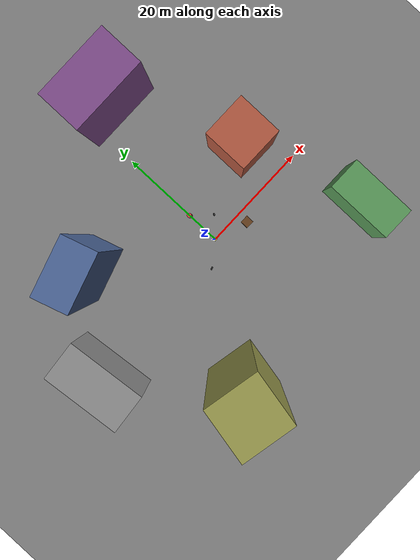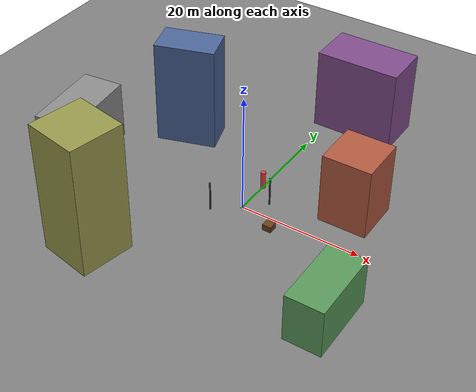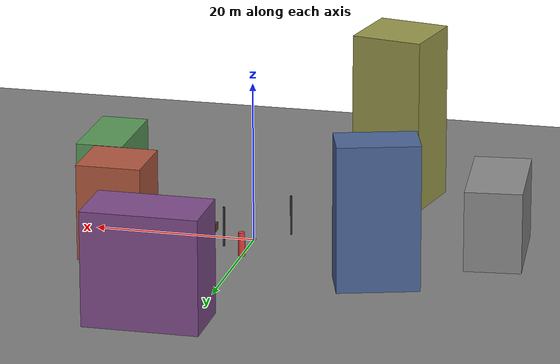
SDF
<?xml version="1.0" ?>
<sdf version="1.7">
  <world name="vo_city">

    <!-- ================= Physics ================= -->
    <physics name="1ms" type="ignored">
      <max_step_size>0.001</max_step_size>
      <real_time_factor>1.0</real_time_factor>
    </physics>

    <plugin filename="gz-sim-physics-system"
            name="gz::sim::systems::Physics"/>
    <plugin filename="gz-sim-user-commands-system"
            name="gz::sim::systems::UserCommands"/>
    <plugin filename="gz-sim-scene-broadcaster-system"
            name="gz::sim::systems::SceneBroadcaster"/>
    <plugin filename="gz-sim-sensors-system"
            name="gz::sim::systems::Sensors">
      <render_engine>ogre2</render_engine>
    </plugin>

    <!-- ================= Lighting ================= -->
    <!-- Directional sun kept slightly off-vertical so buildings cast
         directional shadows -> more texture gradient for feature detectors. -->
    <light type="directional" name="sun">
      <cast_shadows>true</cast_shadows>
      <pose>0 0 30 0 0 0</pose>
      <diffuse>0.9 0.9 0.9 1</diffuse>
      <specular>0.25 0.25 0.25 1</specular>
      <direction>-0.4 0.5 -0.9</direction>
      <attenuation>
        <range>1000</range>
        <constant>0.9</constant>
        <linear>0.01</linear>
        <quadratic>0.001</quadratic>
      </attenuation>
    </light>

    <scene>
      <ambient>0.5 0.5 0.5 1</ambient>
      <background>0.7 0.75 0.85 1</background>
      <shadows>true</shadows>
    </scene>

    <!-- ================= Ground ================= -->
    <!-- Textured checker-like plane. A flat single-color plane gives VO
         almost nothing to track, so we use a repeating textured material. -->
    <model name="ground_plane">
      <static>true</static>
      <link name="link">
        <collision name="collision">
          <geometry>
            <plane>
              <normal>0 0 1</normal>
              <size>200 200</size>
            </plane>
          </geometry>
        </collision>
        <visual name="visual">
          <geometry>
            <plane>
              <normal>0 0 1</normal>
              <size>200 200</size>
            </plane>
          </geometry>
          <material>
            <ambient>0.3 0.3 0.3 1</ambient>
            <diffuse>0.5 0.5 0.5 1</diffuse>
            <specular>0.1 0.1 0.1 1</specular>
          </material>
        </visual>
      </link>
    </model>

    <!-- helper macro-style: each building is a static box -->
    <model name="building_A">
      <static>true</static>
      <pose>15 8 6 0 0 0</pose>
      <link name="link">
        <collision name="c"><geometry><box><size>8 8 12</size></box></geometry></collision>
        <visual name="v">
          <geometry><box><size>8 8 12</size></box></geometry>
          <material><ambient>0.6 0.3 0.2 1</ambient><diffuse>0.7 0.35 0.25 1</diffuse></material>
        </visual>
      </link>
    </model>

    <model name="building_B">
      <static>true</static>
      <pose>-18 12 9 0 0 0.3</pose>
      <link name="link">
        <collision name="c"><geometry><box><size>10 6 18</size></box></geometry></collision>
        <visual name="v">
          <geometry><box><size>10 6 18</size></box></geometry>
          <material><ambient>0.25 0.35 0.5 1</ambient><diffuse>0.3 0.4 0.6 1</diffuse></material>
        </visual>
      </link>
    </model>

    <model name="building_C">
      <static>true</static>
      <pose>22 -14 4 0 0 0</pose>
      <link name="link">
        <collision name="c"><geometry><box><size>6 12 8</size></box></geometry></collision>
        <visual name="v">
          <geometry><box><size>6 12 8</size></box></geometry>
          <material><ambient>0.3 0.5 0.3 1</ambient><diffuse>0.35 0.6 0.35 1</diffuse></material>
        </visual>
      </link>
    </model>

    <model name="building_D">
      <static>true</static>
      <pose>-14 -20 11 0 0 -0.2</pose>
      <link name="link">
        <collision name="c"><geometry><box><size>9 9 22</size></box></geometry></collision>
        <visual name="v">
          <geometry><box><size>9 9 22</size></box></geometry>
          <material><ambient>0.5 0.5 0.25 1</ambient><diffuse>0.6 0.6 0.3 1</diffuse></material>
        </visual>
      </link>
    </model>

    <model name="building_E">
      <static>true</static>
      <pose>5 30 7 0 0 0</pose>
      <link name="link">
        <collision name="c"><geometry><box><size>14 8 14</size></box></geometry></collision>
        <visual name="v">
          <geometry><box><size>14 8 14</size></box></geometry>
          <material><ambient>0.4 0.25 0.45 1</ambient><diffuse>0.5 0.3 0.55 1</diffuse></material>
        </visual>
      </link>
    </model>

    <model name="building_F">
      <static>true</static>
      <pose>-30 -2 5 0 0 0.1</pose>
      <link name="link">
        <collision name="c"><geometry><box><size>7 14 10</size></box></geometry></collision>
        <visual name="v">
          <geometry><box><size>7 14 10</size></box></geometry>
          <material><ambient>0.45 0.45 0.45 1</ambient><diffuse>0.55 0.55 0.55 1</diffuse></material>
        </visual>
      </link>
    </model>

    <!-- ================= Street furniture =================
         Small nearby objects create high-parallax features (crucial for
         disambiguating translation vs. rotation in monocular VO). -->

    <model name="lamp_post_1">
      <static>true</static>
      <pose>3 3 2.5 0 0 0</pose>
      <link name="link">
        <collision name="c"><geometry><cylinder><radius>0.15</radius><length>5</length></cylinder></geometry></collision>
        <visual name="v">
          <geometry><cylinder><radius>0.15</radius><length>5</length></cylinder></geometry>
          <material><ambient>0.1 0.1 0.1 1</ambient><diffuse>0.15 0.15 0.15 1</diffuse></material>
        </visual>
      </link>
    </model>

    <model name="lamp_post_2">
      <static>true</static>
      <pose>-4 -3 2.5 0 0 0</pose>
      <link name="link">
        <collision name="c"><geometry><cylinder><radius>0.15</radius><length>5</length></cylinder></geometry></collision>
        <visual name="v">
          <geometry><cylinder><radius>0.15</radius><length>5</length></cylinder></geometry>
          <material><ambient>0.1 0.1 0.1 1</ambient><diffuse>0.15 0.15 0.15 1</diffuse></material>
        </visual>
      </link>
    </model>

    <model name="planter_box">
      <static>true</static>
      <pose>6 -2 0.5 0 0 0</pose>
      <link name="link">
        <collision name="c"><geometry><box><size>1.5 1.5 1</size></box></geometry></collision>
        <visual name="v">
          <geometry><box><size>1.5 1.5 1</size></box></geometry>
          <material><ambient>0.35 0.2 0.1 1</ambient><diffuse>0.4 0.25 0.12 1</diffuse></material>
        </visual>
      </link>
    </model>

    <model name="ref_pillar">
      <static>true</static>
      <pose>0 6 1.5 0 0 0</pose>
      <link name="link">
        <collision name="c"><geometry><cylinder><radius>0.4</radius><length>3</length></cylinder></geometry></collision>
        <visual name="v">
          <geometry><cylinder><radius>0.4</radius><length>3</length></cylinder></geometry>
          <material><ambient>0.8 0.2 0.2 1</ambient><diffuse>0.9 0.25 0.25 1</diffuse></material>
        </visual>
      </link>
    </model>

    <!-- Origin marker: gives VO a fixed, uniquely-colored landmark at
         world origin for ground-truth alignment / drift measurement. -->
    <model name="origin_marker">
      <static>true</static>
      <pose>0 0 0.05 0 0 0</pose>
      <link name="link">
        <visual name="v">
          <geometry><box><size>0.5 0.5 0.1</size></box></geometry>
          <material><ambient>1 1 0 1</ambient><diffuse>1 1 0 1</diffuse></material>
        </visual>
      </link>
    </model>

  </world>
</sdf>
